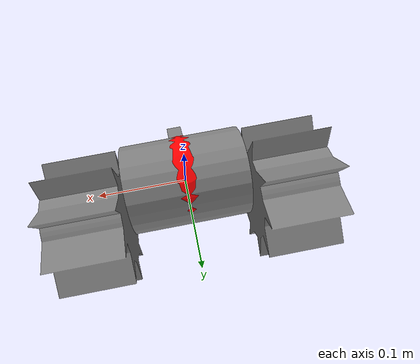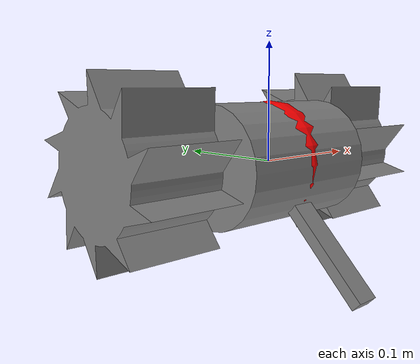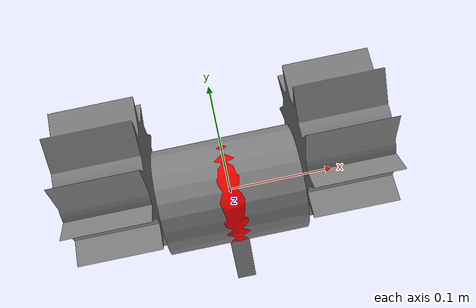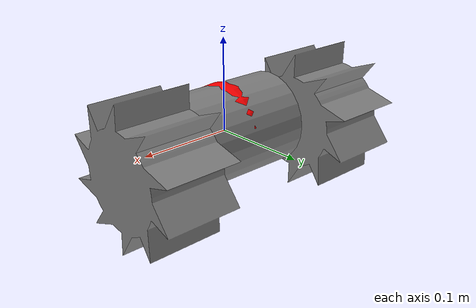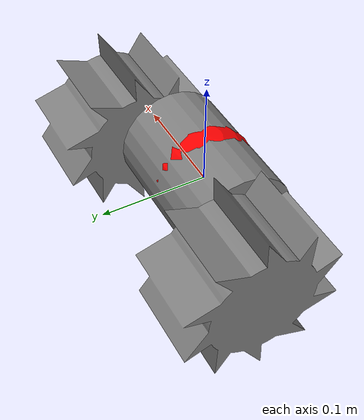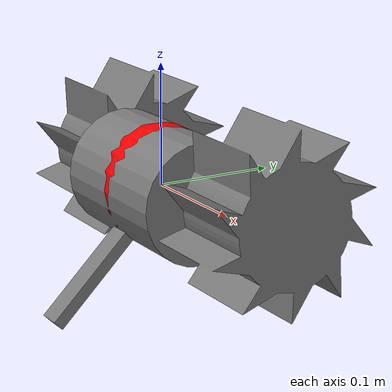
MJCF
<mujoco model="2wheel_rover_one_way_grouser">
  <compiler angle="radian"/>

  <asset>
    <mesh name="wheel" file="mesh/one_way_grouser.stl" scale="0.001 0.001 0.001" inertia="exact" refquat="1 0 0 0"/>
  </asset>

  <worldbody>
    <body name="2wheel_rover">
      <joint name="body_free_joint" type="free" damping="1"/>

      <body name="main_body">
        <geom name="main_body_geom" group="2" type="cylinder" fromto="0.065 0 0 -0.065 0 0" size="0.05" mass="0.5"/>
      </body>

      <site name="marker" pos="0 -0.0005 0.001" size="0.05" type="sphere" rgba="1 0 0 1"/>
      <site name="IMU" pos="0 0 0" size="0.01" rgba="1 0 1 1"/>
      <site name="GYRO" pos="0 0 0" size="0.01" rgba="0 1 1 1"/>
      <site name="VELOCITY" pos="0 0 0" size="0.01" rgba="0 1 1 1"/>

      <body name="r_wheel" pos="0.07 0 0">
        <joint name="r_wheel_joint" type="hinge" axis="-1 0 0" damping="0.3" frictionloss="0.01"/>
        <geom name="r_wheel_geom" group="2" type="mesh" mesh="wheel" mass="0.25" pos="0 0.03 0" friction="1 0.1 0.1"/>
      </body>
      <body name="l_wheel" pos="-0.15 0 0">
        <joint name="l_wheel_joint" type="hinge" axis="-1 0 0" damping="0.3" frictionloss="0.01"/>
        <geom name="l_wheel_geom" group="2" type="mesh" mesh="wheel" mass="0.25" pos="0 0.03 0" friction="1 0.1 0.1"/>
      </body>

      <!-- trailing skid: keeps the rover from pitching over since it only has left/right wheels -->
      <geom name="stabilizer" group="2" type="box" size="0.01 0.07 0.005" pos="0 -0.049497 -0.049497" euler="0.7853981634 0 0" mass="0.2"/>
    </body>
  </worldbody>

  <actuator>
    <intvelocity name="r_motor" joint="r_wheel_joint" gear="1" kp="1" actrange="-inf inf" ctrllimited="true" ctrlrange="-5.2359877 5.2359877" forcelimited="true" forcerange="-2.94 2.94"/>
    <intvelocity name="l_motor" joint="l_wheel_joint" gear="1" kp="1" actrange="-inf inf" ctrllimited="true" ctrlrange="-5.2359877 5.2359877" forcelimited="true" forcerange="-2.94 2.94"/>
  </actuator>

  <sensor>
    <accelerometer name="accelerometer" site="IMU"/>
    <gyro name="gyro" site="GYRO"/>
    <velocimeter name="velocimeter" site="VELOCITY"/>
  </sensor>
</mujoco>
